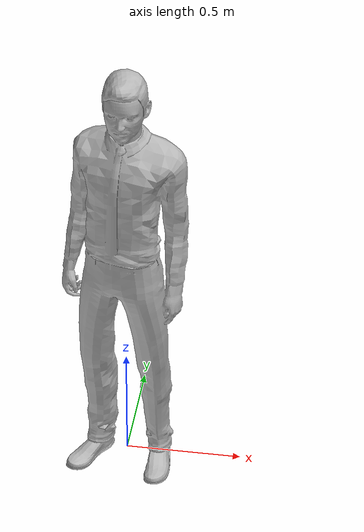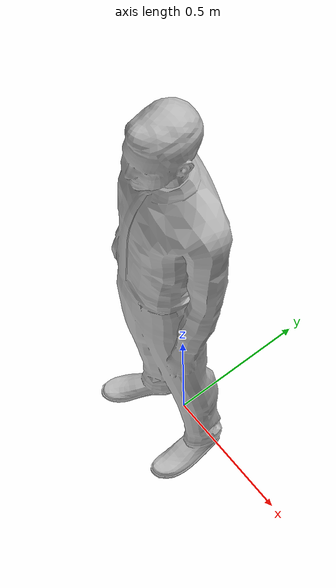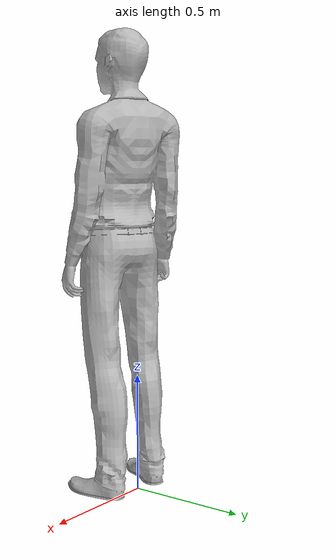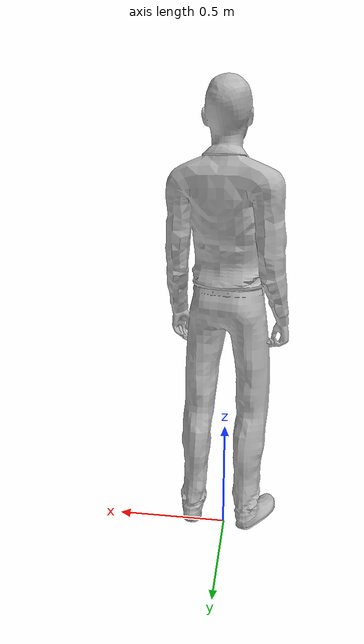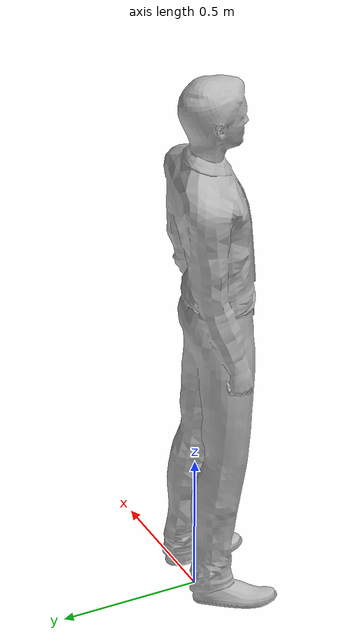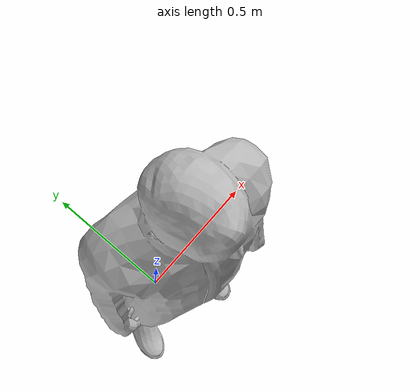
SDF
<?xml version="1.0" ?>
<sdf version="1.5">
  <model name="human">
    <pose>0 0 0  0 0 0</pose>
    <static>true</static>
    <link name="body">
      <visual name="visual">
        <geometry>
          <mesh><uri>model://man/man.dae</uri></mesh>
        </geometry>
      </visual>
      <collision name="collision">
        <geometry>
          <mesh><uri>model://man/man.dae</uri></mesh>
        </geometry>
      </collision>
    </link>
  </model>
</sdf>
